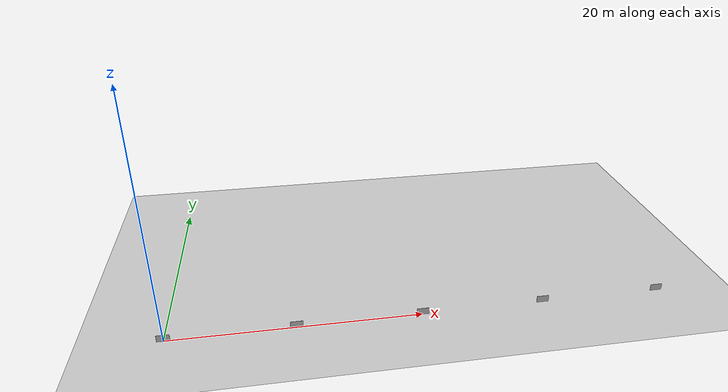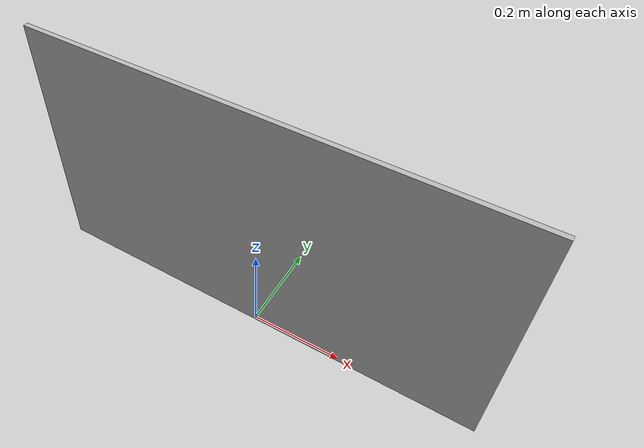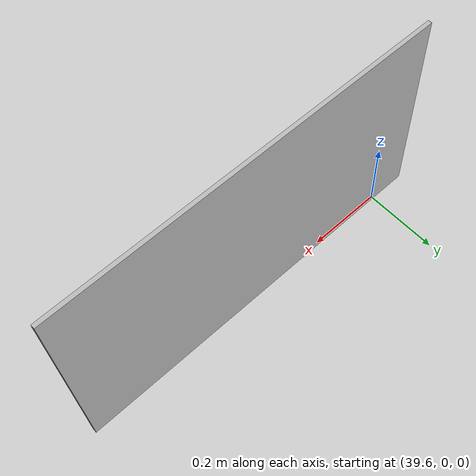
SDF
<?xml version='1.0' ?>
    <sdf version='1.5'>
    <world name='default'>
    <gui>
      <plugin name='simslides' filename='libsimslides.so'>
        <slide_prefix>banner</slide_prefix>
        <keyframe type='lookat' number='0'/>
        <keyframe type='lookat' number='1'/>
        <keyframe type='lookat' number='2'/>
        <keyframe type='lookat' number='3'/>
        <keyframe type='lookat' number='4'/>
    </plugin>
      <plugin name='keyboard' filename='libKeyboardGUIPlugin.so'>
      </plugin>
    </gui>
    <include>
      <uri>model://sun</uri>
    </include>
    <include>
      <uri>model://ground_plane</uri>
    </include><include>
        <name>banner-0</name>
        <pose>00 0 0 0 0 0</pose>
        <uri>model://banner-0</uri>
      </include><include>
        <name>banner-1</name>
        <pose>10 0 0 0 0 0</pose>
        <uri>model://banner-1</uri>
      </include><include>
        <name>banner-2</name>
        <pose>20 0 0 0 0 0</pose>
        <uri>model://banner-2</uri>
      </include><include>
        <name>banner-3</name>
        <pose>30 0 0 0 0 0</pose>
        <uri>model://banner-3</uri>
      </include><include>
        <name>banner-4</name>
        <pose>40 0 0 0 0 0</pose>
        <uri>model://banner-4</uri>
      </include></world>
    </sdf>

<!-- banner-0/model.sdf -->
<sdf version='1.6'>
<model name='banner-0'>
  <static>1</static>
  <link name='link'>
    <pose frame=''>0 0 0.28 0 -0 0</pose>
    <collision name='collision'>
      <geometry>
        <box>
          <size>1 0.01 0.56</size>
        </box>
      </geometry>
    </collision>
    <visual name='visual'>
      <geometry>
        <box>
          <size>1 0.01 0.56</size>
        </box>
      </geometry>
      <material>
        <script>
          <uri>model://banner-0/materials/scripts</uri>
          <uri>model://banner-0/materials/textures</uri>
          <name>Slides/banner_0</name>
        </script>
      </material>
    </visual>
  </link>
</model>
</sdf>

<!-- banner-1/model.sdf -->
<sdf version='1.6'>
<model name='banner-1'>
  <static>1</static>
  <link name='link'>
    <pose frame=''>0 0 0.28 0 -0 0</pose>
    <collision name='collision'>
      <geometry>
        <box>
          <size>1 0.01 0.56</size>
        </box>
      </geometry>
    </collision>
    <visual name='visual'>
      <geometry>
        <box>
          <size>1 0.01 0.56</size>
        </box>
      </geometry>
      <material>
        <script>
          <uri>model://banner-1/materials/scripts</uri>
          <uri>model://banner-1/materials/textures</uri>
          <name>Slides/banner_1</name>
        </script>
      </material>
    </visual>
  </link>
</model>
</sdf>

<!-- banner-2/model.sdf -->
<sdf version='1.6'>
<model name='banner-2'>
  <static>1</static>
  <link name='link'>
    <pose frame=''>0 0 0.28 0 -0 0</pose>
    <collision name='collision'>
      <geometry>
        <box>
          <size>1 0.01 0.56</size>
        </box>
      </geometry>
    </collision>
    <visual name='visual'>
      <geometry>
        <box>
          <size>1 0.01 0.56</size>
        </box>
      </geometry>
      <material>
        <script>
          <uri>model://banner-2/materials/scripts</uri>
          <uri>model://banner-2/materials/textures</uri>
          <name>Slides/banner_2</name>
        </script>
      </material>
    </visual>
  </link>
</model>
</sdf>

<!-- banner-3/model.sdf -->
<sdf version='1.6'>
<model name='banner-3'>
  <static>1</static>
  <link name='link'>
    <pose frame=''>0 0 0.28 0 -0 0</pose>
    <collision name='collision'>
      <geometry>
        <box>
          <size>1 0.01 0.56</size>
        </box>
      </geometry>
    </collision>
    <visual name='visual'>
      <geometry>
        <box>
          <size>1 0.01 0.56</size>
        </box>
      </geometry>
      <material>
        <script>
          <uri>model://banner-3/materials/scripts</uri>
          <uri>model://banner-3/materials/textures</uri>
          <name>Slides/banner_3</name>
        </script>
      </material>
    </visual>
  </link>
</model>
</sdf>

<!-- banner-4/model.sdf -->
<sdf version='1.6'>
<model name='banner-4'>
  <static>1</static>
  <link name='link'>
    <pose frame=''>0 0 0.28 0 -0 0</pose>
    <collision name='collision'>
      <geometry>
        <box>
          <size>1 0.01 0.56</size>
        </box>
      </geometry>
    </collision>
    <visual name='visual'>
      <geometry>
        <box>
          <size>1 0.01 0.56</size>
        </box>
      </geometry>
      <material>
        <script>
          <uri>model://banner-4/materials/scripts</uri>
          <uri>model://banner-4/materials/textures</uri>
          <name>Slides/banner_4</name>
        </script>
      </material>
    </visual>
  </link>
</model>
</sdf>
